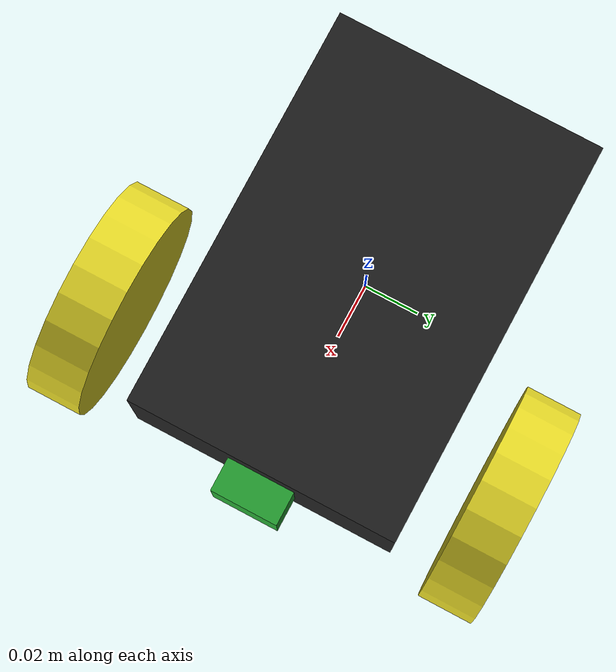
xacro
<?xml version='1.0'?>

<robot name="myrobot" xmlns:xacro="http://www.ros.org/wiki/xacro">

  <xacro:property name="cameraSize" value="0.025"/>
  <xacro:property name="cameraMass" value="0.1"/>

  <xacro:include filename="$(find cv)/urdf/spcbot/spcbot.gazebo.xacro"/>

  <link name='chassis'>
    <pose>0 0 0.1 0 0 0</pose>

    <inertial>
      <mass value="5.0"/>
      <origin xyz="0.0 0 0.1" rpy=" 0 0 0"/>
      <inertia
          ixx="0.025" ixy="0" ixz="0"
          iyy="0.09166667" iyz="0"
          izz="0.10833333"
      />
    </inertial>

    <collision name='collision'>
      <geometry>
        <box size=".15 .1 .05"/>
      </geometry>
    </collision>

    <visual name='chassis_visual'>
      <origin xyz="0 0 0" rpy=" 0 0 0"/>
      <geometry>
        <box size=".15 .1 .05"/>
      </geometry>
      <material name="black"/>
    </visual>
    <collision name='caster_collision'>
      <origin xyz="-0.055 0 -0.02" rpy=" 0 0 0"/>
      <geometry>
        <sphere radius="0.02"/>
      </geometry>
    </collision>

    <visual name='caster_visual'>
      <origin xyz="-0.055 0 -0.02" rpy=" 0 0 0"/>
      <geometry>
        <sphere radius="0.02"/>
      </geometry>
    </visual>

  </link>

  <link name="left_wheel">
    <!--origin xyz="0.1 0.13 0.1" rpy="0 1.5707 1.5707"/-->
    <collision name="collision">
      <origin xyz="0 0 0" rpy="0 1.5707 1.5707"/>
      <geometry>
        <cylinder radius="0.04" length="0.02"/>
      </geometry>
    </collision>
    <visual name="left_wheel_visual">
      <origin xyz="0 0 0" rpy="0 1.5707 1.5707"/>
      <geometry>
        <cylinder radius="0.04" length="0.02"/>
      </geometry>
      <material name="yellow"/>
    </visual>
    <inertial>
      <origin xyz="0 0 0" rpy="0 1.5707 1.5707"/>
      <mass value="5"/>
      <inertia
        ixx=".1" ixy="0.0" ixz="0.0"
        iyy=".1" iyz="0.0"
        izz=".1"/>
    </inertial>
  </link>

  <link name="right_wheel">
    <!--origin xyz="0.1 -0.13 0.1" rpy="0 1.5707 1.5707"/-->
    <collision name="collision">
      <origin xyz="0 0 0" rpy="0 1.5707 1.5707"/>
      <geometry>
        <cylinder radius="0.04" length="0.02"/>
      </geometry>
    </collision>
    <visual name="right_wheel_visual">
      <origin xyz="0 0 0" rpy="0 1.5707 1.5707"/>
      <geometry>
        <cylinder radius="0.04" length="0.02"/>
      </geometry>
      <material name="yellow"/>
    </visual>
    <inertial>
      <origin xyz="0 0 0" rpy="0 1.5707 1.5707"/>
      <mass value="5"/>
      <inertia
        ixx=".1" ixy="0.0" ixz="0.0"
        iyy=".1" iyz="0.0"
        izz=".1"/>
    </inertial>
  </link>

  <joint type="continuous" name="left_wheel_hinge">
    <origin xyz=".045 0.075 0" rpy="0 0 0"/>
    <!--origin xyz="0.1 0.13 0" rpy="0 1.5707 1.5707"/-->
    <child link="left_wheel"/>
    <parent link="chassis"/>
    <axis xyz="0 1 0" rpy="0 0 0"/>
    <joint_properties damping="0.0" friction="0.0"/>
  </joint>

  <joint type="continuous" name="right_wheel_hinge">
    <origin xyz=".045 -0.075 0" rpy="0 0 0"/>
    <!--origin xyz="0.1 -0.13 0" rpy="0 1.5707 1.5707"/-->
    <child link="right_wheel"/>
    <parent link="chassis"/>
    <axis xyz="0 1 0" rpy="0 0 0"/>
    <joint_properties damping="0.0" friction="0.0"/>
  </joint>

  <link name="camera_link">
    <collision>
      <origin xyz="0 0 0" rpy="0 0 0"/>
      <geometry>
        <box size="${cameraSize} ${cameraSize} ${cameraSize}"/>
      </geometry>
    </collision>

    <visual>
      <origin xyz="0 0 0" rpy="0 0 0"/>
      <geometry>
        <box size="${cameraSize} ${cameraSize} ${cameraSize}"/>
      </geometry>
      <material name="green"/>
    </visual>

    <inertial>
      <mass value="${cameraMass}" />
      <origin xyz="0 0 0" rpy="0 0 0"/>
      <box_inertia m="${cameraMass}" x="${cameraSize}" y="${cameraSize}" z="${cameraSize}" />
      <inertia ixx="1e-6" ixy="0" ixz="0" iyy="1e-6" iyz="0" izz="1e-6" />
    </inertial>
  </link>

  <joint name="camera_joint" type="fixed">
    <axis xyz="0 1 0" />
    <origin xyz=".075 0 0" rpy="0 0 0"/>
    <parent link="chassis"/>
    <child link="camera_link"/>
  </joint>

  <transmission name="left_wheel_transmission">
      <type>transmission_interface/SimpleTransmission</type>
      <actuator name="left_motor">
        <mechanicalReduction>1</mechanicalReduction>
      </actuator>
      <joint name="left_wheel_hinge">
        <hardwareInterface>hardware_interface/VelocityJointInterface</hardwareInterface>
      </joint>
    </transmission>

    <transmission name="right_wheel_transmission">
      <type>transmission_interface/SimpleTransmission</type>
      <actuator name="right_motor">
        <mechanicalReduction>1</mechanicalReduction>
      </actuator>
      <joint name="right_wheel_hinge">
        <hardwareInterface>hardware_interface/VelocityJointInterface</hardwareInterface>
      </joint>
    </transmission>

</robot>
